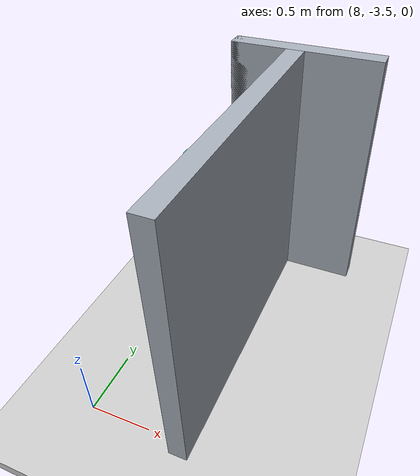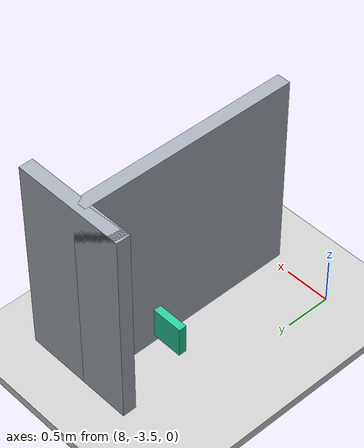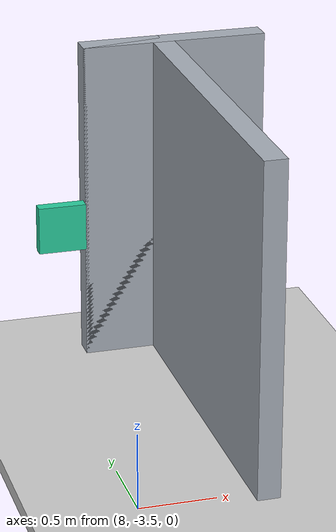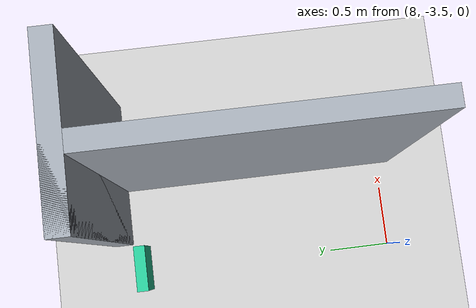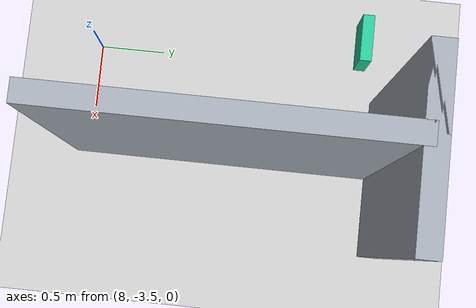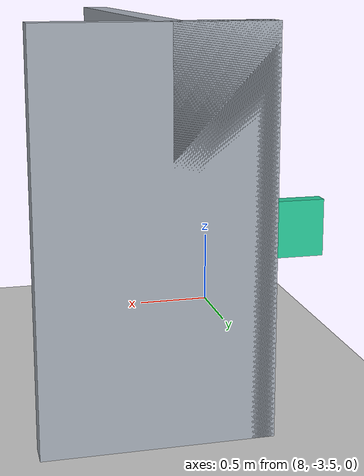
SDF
<sdf version="1.9">
 <world name="default">
  <model name="ground_plane">
   <static>true</static>
   <pose>4.75 0 -0.05 0 0 0</pose>
   <link name="body">
    <collision name="collision"><geometry><box><size>13.5 12 0.1</size></box></geometry></collision>
    <visual name="visual">
     <geometry><box><size>13.5 12 0.1</size></box></geometry>
     <material><ambient>0.8 0.8 0.8 1</ambient><diffuse>0.8 0.8 0.8 1</diffuse></material>
    </visual>
   </link>
  </model>
  <model name="room_-1_2_1">
   <static>true</static>
   <pose>8.8 -2.4 1.1 0 0 0</pose>
   <link name="body">
    <collision name="collision"><geometry><box><size>0.15 2.4 2.2</size></box></geometry></collision>
    <visual name="visual">
     <geometry><box><size>0.15 2.4 2.2</size></box></geometry>
     <material><ambient>0.65 0.68 0.72 1</ambient><diffuse>0.65 0.68 0.72 1</diffuse></material>
    </visual>
   </link>
  </model>
  <model name="jamb_-1_2_1">
   <static>true</static>
   <pose>8.525 -1.2 1.1 0 0 0</pose>
   <link name="body">
    <collision name="collision"><geometry><box><size>0.55 0.15 2.2</size></box></geometry></collision>
    <visual name="visual">
     <geometry><box><size>0.55 0.15 2.2</size></box></geometry>
     <material><ambient>0.65 0.68 0.72 1</ambient><diffuse>0.65 0.68 0.72 1</diffuse></material>
    </visual>
   </link>
  </model>
  <model name="hall_end_-1">
   <static>true</static>
   <pose>8.875 -1.2 1.1 0 0 0</pose>
   <link name="body">
    <collision name="collision"><geometry><box><size>1.25 0.15 2.2</size></box></geometry></collision>
    <visual name="visual">
     <geometry><box><size>1.25 0.15 2.2</size></box></geometry>
     <material><ambient>0.65 0.68 0.72 1</ambient><diffuse>0.65 0.68 0.72 1</diffuse></material>
    </visual>
   </link>
  </model>
  <model name="r3geo_base_r010_right_2_entrance_sign">
   <static>true</static>
   <pose>8.03 -1.5 1.05 0 0 0</pose>
   <link name="body">
    <visual name="visual">
     <geometry><box><size>0.32 0.08 0.32</size></box></geometry>
     <material><ambient>0.16 0.8 0.61 1</ambient><diffuse>0.16 0.8 0.61 1</diffuse></material>
    </visual>
   </link>
  </model>
 </world>
</sdf>
